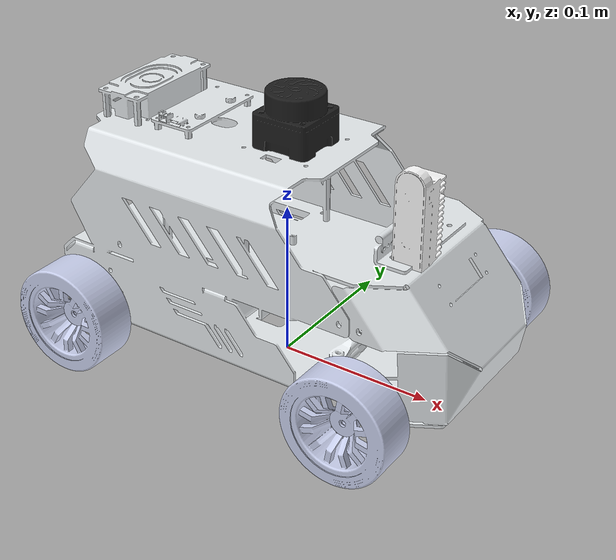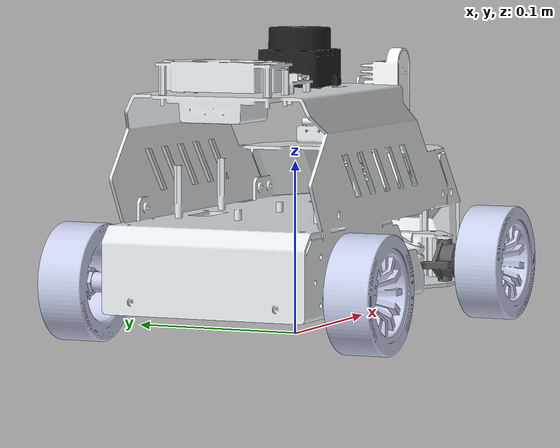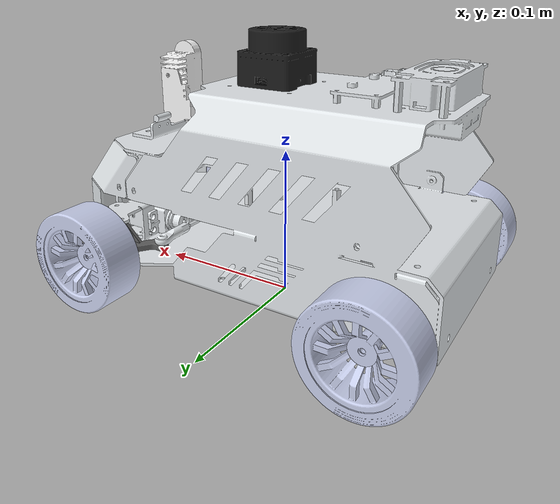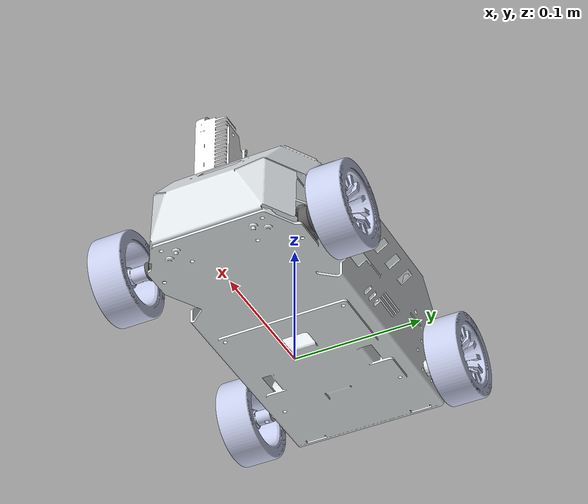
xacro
<?xml version="1.0" encoding="utf-8"?>
<robot name="yahboomcar_A1" xmlns:xacro="http://ros.org/wiki/xacro">
  <link name="robot2/imu_link"/>
  <link
    name="robot2/base_link">
    <inertial>
      <origin
        xyz="-0.015746541514953 -3.81194310309278E-06 0.0445016032560171"
        rpy="0 0 0" />
      <mass
        value="1.07553948051665" />
      <inertia
        ixx="0.00172418331028207"
        ixy="-2.35223116839001E-07"
        ixz="8.3813050960105E-05"
        iyy="0.00329378069831256"
        iyz="-2.25863771079264E-07"
        izz="0.00445732461717744" />
    </inertial>
    <visual>
      <origin
        xyz="0 0 0"
        rpy="0 0 0" />
      <geometry>
        <mesh
          filename="package://yahboomcar_description/meshes/A1Ackermann/base_link.STL" />
      </geometry>
      <material
        name="">
        <color
          rgba="0.898039215686275 0.917647058823529 0.929411764705882 1" />
      </material>
    </visual>
    <collision>
      <origin
        xyz="0 0 0"
        rpy="0 0 0" />
      <geometry>
        <mesh
          filename="package://yahboomcar_description/meshes/A1Ackermann/base_link.STL" />
      </geometry>
    </collision>
  </link>
  <link
    name="robot2/left_steering_hinge_joint">
    <inertial>
      <origin
        xyz="-0.00432772107986408 0.00342831189726796 -0.000372306089408943"
        rpy="0 0 0" />
      <mass
        value="0.00410072639970501" />
      <inertia
        ixx="2.31077741860635E-07"
        ixy="-1.07215901497976E-07"
        ixz="-1.88915741168269E-08"
        iyy="4.30040568759882E-07"
        iyz="-7.54747758276882E-09"
        izz="4.26845883673014E-07" />
    </inertial>
    <visual>
      <origin
        xyz="0 0 0"
        rpy="0 0 0" />
      <geometry>
        <mesh
          filename="package://yahboomcar_description/meshes/A1Ackermann/left_steering_hinge_joint.STL" />
      </geometry>
      <material
        name="">
        <color
          rgba="0.372549019607843 0.372549019607843 0.372549019607843 1" />
      </material>
    </visual>
    <collision>
      <origin
        xyz="0 0 0"
        rpy="0 0 0" />
      <geometry>
        <mesh
          filename="package://yahboomcar_description/meshes/A1Ackermann/left_steering_hinge_joint.STL" />
      </geometry>
    </collision>
  </link>
  <joint
    name="robot2/left_steering_hinge_joint"
    type="revolute">
    <origin
      xyz="0.097 0.055 0.0146"
      rpy="0 0 0" />
    <parent
      link="robot2/base_link" />
    <child
      link="robot2/left_steering_hinge_joint" />
    <axis
      xyz="0 0 -1" />
    <limit
      lower="-0.5236"
      upper="0.5236"
      effort="0"
      velocity="1" />
  </joint>
  <link
    name="robot2/left_front_wheel_joint">
    <inertial>
      <origin
        xyz="-3.41254080549191E-10 4.25527049982555E-06 -1.57588005145204E-11"
        rpy="0 0 0" />
      <mass
        value="0.0556804524709551" />
      <inertia
        ixx="2.42162819571084E-05"
        ixy="-8.02192454940489E-14"
        ixz="5.34047350088353E-09"
        iyy="4.23054199692737E-05"
        iyz="-1.54995540245452E-15"
        izz="2.42295994140218E-05" />
    </inertial>
    <visual>
      <origin
        xyz="0 0 0"
        rpy="0 0 0" />
      <geometry>
        <mesh
          filename="package://yahboomcar_description/meshes/A1Ackermann/left_front_wheel_joint.STL" />
      </geometry>
      <material
        name="">
        <color
          rgba="0.792156862745098 0.819607843137255 0.933333333333333 1" />
      </material>
    </visual>
    <collision>
      <origin
        xyz="0 0 0"
        rpy="0 0 0" />
      <geometry>
        <mesh
          filename="package://yahboomcar_description/meshes/A1Ackermann/left_front_wheel_joint.STL" />
      </geometry>
    </collision>
  </link>
  <joint
    name="robot2/left_front_wheel_joint"
    type="continuous">
    <origin
      xyz="0 0.03185 0"
      rpy="0 0 0" />
    <parent
      link="robot2/left_steering_hinge_joint" />
    <child
      link="robot2/left_front_wheel_joint" />
    <axis
      xyz="0 1 0" />
    <limit
      effort="0"
      velocity="1" />
  </joint>
  <link
    name="robot2/right_steering_hinge_joint">
    <inertial>
      <origin
        xyz="-0.0043277416647159 -0.00342817202688869 -0.000372360299695798"
        rpy="0 0 0" />
      <mass
        value="0.00410082931421252" />
      <inertia
        ixx="2.31084068665315E-07"
        ixy="1.07219390383862E-07"
        ixz="-1.88905122267278E-08"
        iyy="4.30053430137022E-07"
        iyz="7.54921132373203E-09"
        izz="4.2685756556227E-07" />
    </inertial>
    <visual>
      <origin
        xyz="0 0 0"
        rpy="0 0 0" />
      <geometry>
        <mesh
          filename="package://yahboomcar_description/meshes/A1Ackermann/right_steering_hinge_joint.STL" />
      </geometry>
      <material
        name="">
        <color
          rgba="0.372549019607843 0.372549019607843 0.372549019607843 1" />
      </material>
    </visual>
    <collision>
      <origin
        xyz="0 0 0"
        rpy="0 0 0" />
      <geometry>
        <mesh
          filename="package://yahboomcar_description/meshes/A1Ackermann/right_steering_hinge_joint.STL" />
      </geometry>
    </collision>
  </link>
  <joint
    name="robot2/right_steering_hinge_joint"
    type="revolute">
    <origin
      xyz="0.097 -0.055 0.0146"
      rpy="0 0 0" />
    <parent
      link="robot2/base_link" />
    <child
      link="robot2/right_steering_hinge_joint" />
    <axis
      xyz="0 0 -1" />
    <limit
      lower="-0.5236"
      upper="0.5236"
      effort="0"
      velocity="1" />
  </joint>
  <link
    name="robot2/right_front_wheel_joint">
    <inertial>
      <origin
        xyz="3.41016742622102E-10 -4.25527049982555E-06 -2.02548065125763E-11"
        rpy="0 0 0" />
      <mass
        value="0.0556804524709551" />
      <inertia
        ixx="2.42213371350958E-05"
        ixy="-8.01918652600886E-14"
        ixz="9.10069427989307E-09"
        iyy="4.23054199692738E-05"
        iyz="2.60702435041177E-15"
        izz="2.42245442360345E-05" />
    </inertial>
    <visual>
      <origin
        xyz="0 0 0"
        rpy="0 0 0" />
      <geometry>
        <mesh
          filename="package://yahboomcar_description/meshes/A1Ackermann/right_front_wheel_joint.STL" />
      </geometry>
      <material
        name="">
        <color
          rgba="0.792156862745098 0.819607843137255 0.933333333333333 1" />
      </material>
    </visual>
    <collision>
      <origin
        xyz="0 0 0"
        rpy="0 0 0" />
      <geometry>
        <mesh
          filename="package://yahboomcar_description/meshes/A1Ackermann/right_front_wheel_joint.STL" />
      </geometry>
    </collision>
  </link>
  <joint
    name="robot2/right_front_wheel_joint"
    type="continuous">
    <origin
      xyz="0 -0.03185 0"
      rpy="0 0 0" />
    <parent
      link="robot2/right_steering_hinge_joint" />
    <child
      link="robot2/right_front_wheel_joint" />
    <axis
      xyz="0 -1 0" />
    <limit
      effort="0"
      velocity="1" />
  </joint>
  <link
    name="robot2/left_rear_wheel_hinge">
    <inertial>
      <origin
        xyz="-4.4187181691413E-11 5.72846855563941E-05 8.15078317339957E-11"
        rpy="0 0 0" />
      <mass
        value="0.0554418184842637" />
      <inertia
        ixx="2.42193835816297E-05"
        ixy="-9.72977228799683E-15"
        ixz="-7.58986126895101E-09"
        iyy="4.23036027754325E-05"
        iyz="1.38356120238906E-14"
        izz="2.42115715562562E-05" />
    </inertial>
    <visual>
      <origin
        xyz="0 0 0"
        rpy="0 0 0" />
      <geometry>
        <mesh
          filename="package://yahboomcar_description/meshes/A1Ackermann/left_rear_wheel_hinge.STL" />
      </geometry>
      <material
        name="">
        <color
          rgba="0.792156862745098 0.819607843137255 0.933333333333333 1" />
      </material>
    </visual>
    <collision>
      <origin
        xyz="0 0 0"
        rpy="0 0 0" />
      <geometry>
        <mesh
          filename="package://yahboomcar_description/meshes/A1Ackermann/left_rear_wheel_hinge.STL" />
      </geometry>
    </collision>
  </link>
  <joint
    name="robot2/left_rear_wheel_hinge"
    type="continuous">
    <origin
      xyz="-0.097 0.08685 0.0145"
      rpy="0 0 0" />
    <parent
      link="robot2/base_link" />
    <child
      link="robot2/left_rear_wheel_hinge" />
    <axis
      xyz="0 1 0" />
  </joint>
  <link
    name="robot2/right_rear_wheel_hinge">
    <inertial>
      <origin
        xyz="-4.41872094469886E-11 -5.72846855564219E-05 -8.15078352034426E-11"
        rpy="0 0 0" />
      <mass
        value="0.0554418184842638" />
      <inertia
        ixx="2.42062373800672E-05"
        ixy="9.72976950081003E-15"
        ixz="-1.01741973935546E-13"
        iyy="4.23036027754325E-05"
        iyz="1.38356144358378E-14"
        izz="2.42247177578187E-05" />
    </inertial>
    <visual>
      <origin
        xyz="0 0 0"
        rpy="0 0 0" />
      <geometry>
        <mesh
          filename="package://yahboomcar_description/meshes/A1Ackermann/right_rear_wheel_hinge.STL" />
      </geometry>
      <material
        name="">
        <color
          rgba="0.792156862745098 0.819607843137255 0.933333333333333 1" />
      </material>
    </visual>
    <collision>
      <origin
        xyz="0 0 0"
        rpy="0 0 0" />
      <geometry>
        <mesh
          filename="package://yahboomcar_description/meshes/A1Ackermann/right_rear_wheel_hinge.STL" />
      </geometry>
    </collision>
  </link>
  <joint
    name="robot2/right_rear_wheel_hinge"
    type="continuous">
    <origin
      xyz="-0.097 -0.08685 0.0145"
      rpy="0 0 0" />
    <parent
      link="robot2/base_link" />
    <child
      link="robot2/right_rear_wheel_hinge" />
    <axis
      xyz="0 -1 0" />
  </joint>
  <link
    name="robot2/laser">
    <inertial>
      <origin
        xyz="8.01192970788865E-05 -0.000142837223458581 -0.0125536403657815"
        rpy="0 0 0" />
      <mass
        value="0.00992629938318762" />
      <inertia
        ixx="1.91413177271348E-06"
        ixy="-2.34516063220997E-08"
        ixz="3.84281721110006E-09"
        iyy="1.8985026286829E-06"
        iyz="-1.82879279848474E-09"
        izz="3.33334865875319E-06" />
    </inertial>
    <visual>
      <origin
        xyz="0 0 0"
        rpy="0 0 0" />
      <geometry>
        <mesh
          filename="package://yahboomcar_description/meshes/A1Ackermann/laser_joint.STL" />
      </geometry>
      <material
        name="">
        <color
          rgba="0.113725490196078 0.113725490196078 0.113725490196078 1" />
      </material>
    </visual>
    <collision>
      <origin
        xyz="0 0 0"
        rpy="0 0 0" />
      <geometry>
        <mesh
          filename="package://yahboomcar_description/meshes/A1Ackermann/laser_joint.STL" />
      </geometry>
    </collision>
  </link>
  <joint
    name="robot2/laser"
    type="fixed">
    <origin
      xyz="0.0060585 0 0.14912"
      rpy="3.1415 3.1415 0" />
    <parent
      link="robot2/base_link" />
    <child
      link="robot2/laser" />
    <axis
      xyz="0 0 0" />
  </joint>
  <link
    name="robot2/ascamera_hp60c_camera_link_0">
    <inertial>
      <origin
        xyz="0.0157767641894291 0.000721365680700223 0.0149734593328878"
        rpy="0 0 0" />
      <mass
        value="0.0287355108109747" />
      <inertia
        ixx="1.49499545679701E-05"
        ixy="1.2483047119348E-07"
        ixz="1.37445274012999E-08"
        iyy="1.81620472110269E-06"
        iyz="2.27879400729702E-08"
        izz="1.49490109031661E-05" />
    </inertial>
    <visual>
      <origin
        xyz="0 0 0"
        rpy="0 0 0" />
      <geometry>
        <mesh
          filename="package://yahboomcar_description/meshes/A1Ackermann/camera_joint.STL" />
      </geometry>
      <material
        name="">
        <color
          rgba="1 1 1 1" />
      </material>
    </visual>
    <collision>
      <origin
        xyz="0 0 0"
        rpy="0 0 0" />
      <geometry>
        <mesh
          filename="package://yahboomcar_description/meshes/A1Ackermann/camera_joint.STL" />
      </geometry>
    </collision>
  </link>
  <joint
    name="robot2/camera_joint"
    type="revolute">
    <origin
      xyz="0.081871 0 0.096136"
      rpy="1.57 3.1415 1.57" />
    <parent
      link="robot2/base_link" />
    <child
      link="robot2/ascamera_hp60c_camera_link_0" />
    <axis
      xyz="0 -1 0" />
    <limit
      lower="-0.7854"
      upper="0.7854"
      effort="0"
      velocity="0" />
  </joint>
  <joint name="robot2/base_imu" type="fixed">
  <parent link="robot2/base_link"/>
  <child link="robot2/imu_link"/>
  <origin xyz="-0.025 -0.034 0.0165" rpy="0 0 0"/>
  </joint>

  <link name="robot2/base_footprint"/>
  <joint name="robot2/base_joint" type="fixed">
    <parent link="robot2/base_footprint"/>
    <child link="robot2/base_link"/>
    <origin xyz="0.0 0.0 0.0215" rpy="0 0 0"/>
  </joint>
</robot>
